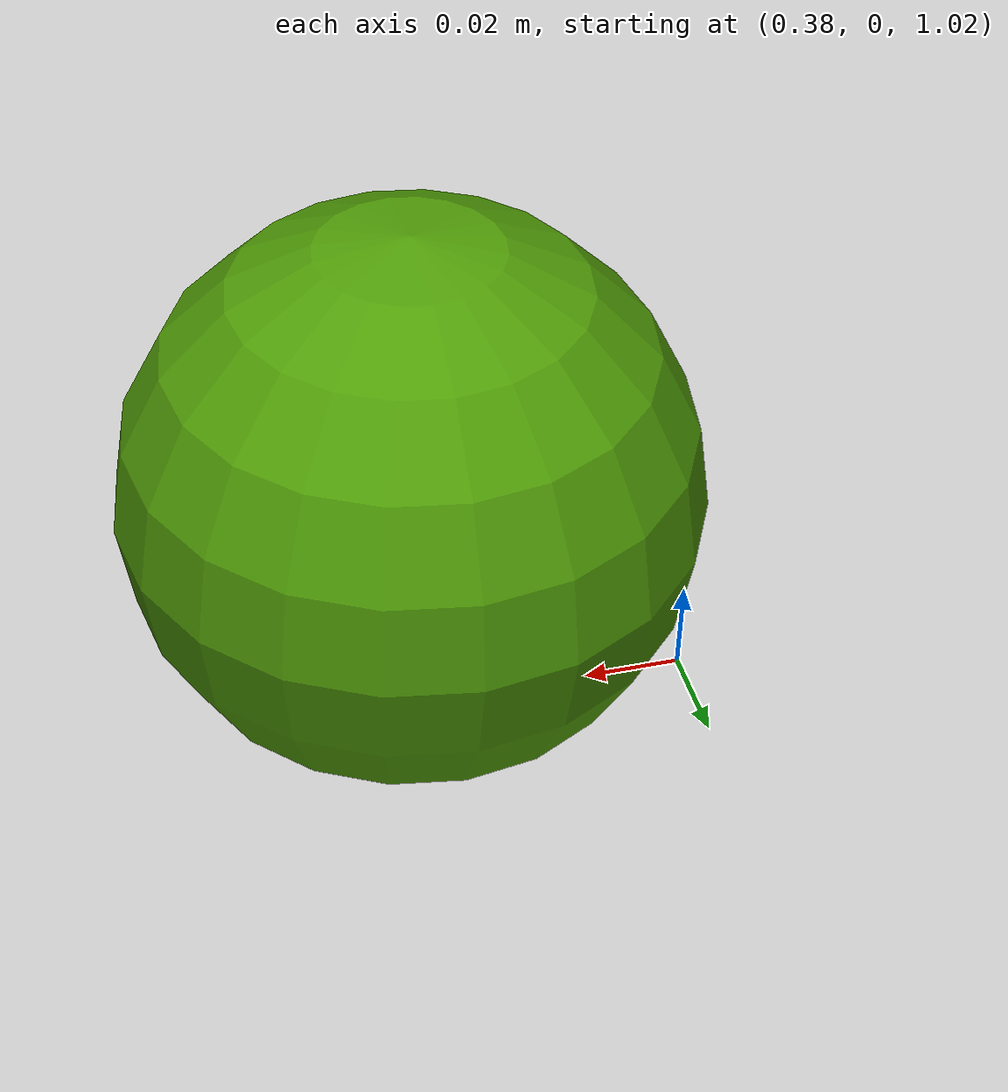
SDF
<?xml version='1.0'?>
<sdf version='1.7'>
  <model name='small_ball_green'>
    <link name='Ball_green'>
      <inertial>
        <mass>0.0013865</mass>
        <inertia>
          <ixx>1.72e-06</ixx>
          <ixy>0</ixy>
          <ixz>0</ixz>
          <iyy>1.72e-06</iyy>
          <iyz>0</iyz>
          <izz>1.72e-06</izz>
        </inertia>
        <pose>0 0 0 0 -0 0</pose>
      </inertial>
      <pose>0.43753 0 1.07792 0 -0 0</pose>
      <self_collide>0</self_collide>
      <enable_wind>0</enable_wind>
      <kinematic>0</kinematic>
      <gravity>1</gravity>
      <visual name='visual'>
        <pose>0 0 0 0 -0 0</pose>
        <geometry>
          <sphere>
            <radius>0.0557538</radius>
          </sphere>
        </geometry>
        <material>
          <lighting>1</lighting>
          <script>
            <uri>file://media/materials/scripts/gazebo.material</uri>
            <name>Gazebo/Grey</name>
          </script>
          <shader type='pixel'>
            <normal_map>__default__</normal_map>
          </shader>
          <ambient>0 1 0 0</ambient>
          <diffuse>0.306 0.604 0.024 1</diffuse>
          <specular>0.01 0.01 0.01 1</specular>
          <emissive>0 0 0 1</emissive>
        </material>
        <transparency>0</transparency>
        <cast_shadows>1</cast_shadows>
      </visual>
      <collision name='collision'>
        <laser_retro>0</laser_retro>
        <max_contacts>10</max_contacts>
        <pose>0 0 0 0 -0 0</pose>
        <geometry>
          <sphere>
            <radius>0.055754</radius>
          </sphere>
        </geometry>
        <surface>
          <friction>
            <ode>
              <mu>1</mu>
              <mu2>1</mu2>
              <fdir1>0 0 0</fdir1>
              <slip1>0</slip1>
              <slip2>0</slip2>
            </ode>
            <torsional>
              <coefficient>1</coefficient>
              <patch_radius>0</patch_radius>
              <surface_radius>0</surface_radius>
              <use_patch_radius>1</use_patch_radius>
              <ode>
                <slip>0</slip>
              </ode>
            </torsional>
          </friction>
          <bounce>
            <restitution_coefficient>0</restitution_coefficient>
            <threshold>1e+06</threshold>
          </bounce>
          <contact>
            <collide_without_contact>0</collide_without_contact>
            <collide_without_contact_bitmask>1</collide_without_contact_bitmask>
            <collide_bitmask>1</collide_bitmask>
            <ode>
              <soft_cfm>0</soft_cfm>
              <soft_erp>0.2</soft_erp>
              <kp>1e+13</kp>
              <kd>1</kd>
              <max_vel>0.01</max_vel>
              <min_depth>0</min_depth>
            </ode>
            <bullet>
              <split_impulse>1</split_impulse>
              <split_impulse_penetration_threshold>-0.01</split_impulse_penetration_threshold>
              <soft_cfm>0</soft_cfm>
              <soft_erp>0.2</soft_erp>
              <kp>1e+13</kp>
              <kd>1</kd>
            </bullet>
          </contact>
        </surface>
      </collision>
    </link>
    <static>1</static>
    <allow_auto_disable>1</allow_auto_disable>
  </model>
</sdf>
